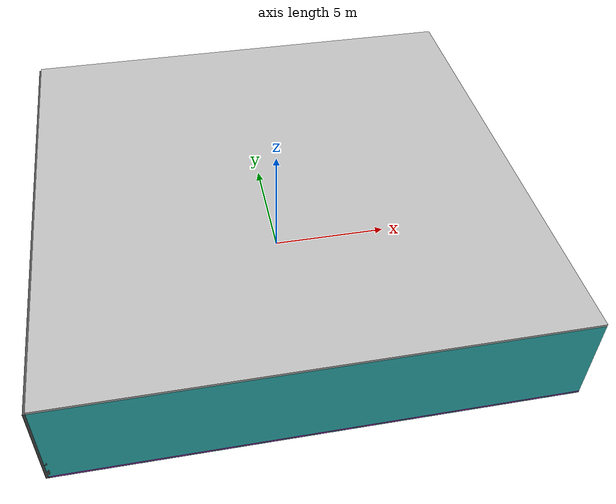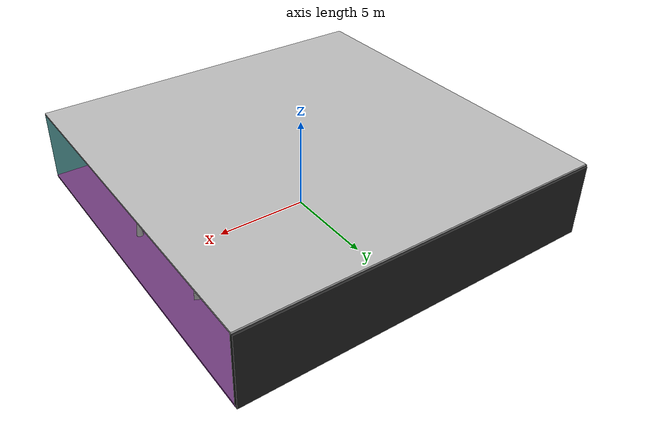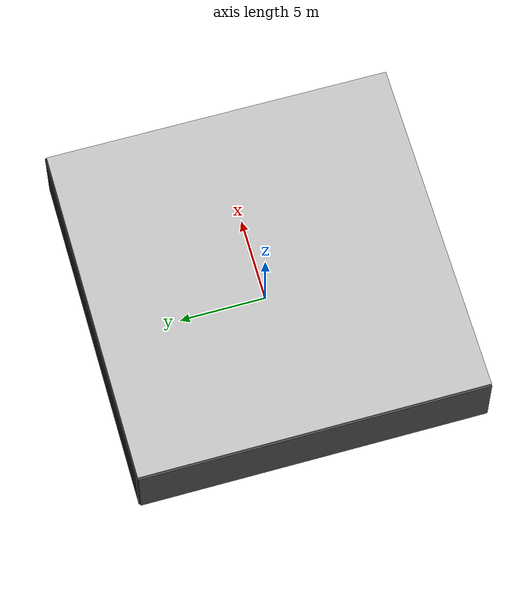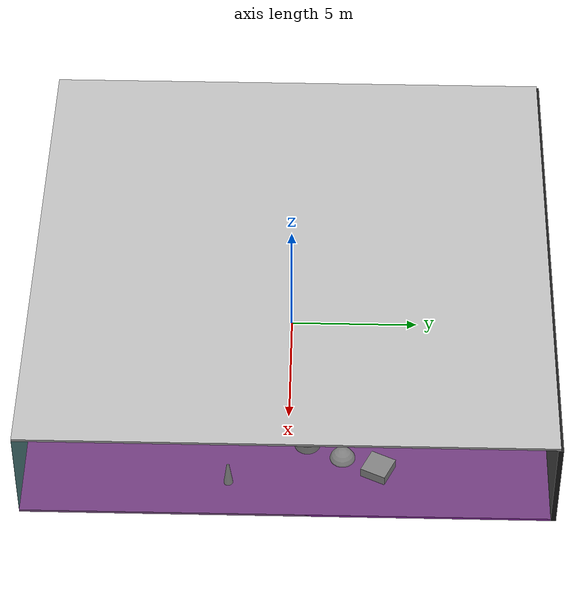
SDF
<sdf version="1.4">
 <world name="default">
  <physics type="ode">
   <max_step_size>0.001</max_step_size>
   <real_time_factor>1</real_time_factor>
   <real_time_update_rate>1000</real_time_update_rate>
   <gravity>0 0 -9.8</gravity>
  </physics>
  <scene><ambient>0.4 0.4 0.4 1</ambient><background>0.7 0.7 0.7 1</background><shadows>1</shadows></scene>
  <model name="Surrounding">
   <static>1</static>
   <link name="Ceiling">
    <collision name="Ceiling_Collision"><geometry><box><size>20 20 0.1</size></box></geometry></collision>
    <visual name="Ceiling_Visual">
     <geometry><box><size>20 20 0.1</size></box></geometry>
     <material>
      <script><uri>file://media/materials/scripts/gazebo.material</uri><name>Gazebo/PioneerBody</name></script>
     </material>
    </visual>
    <pose>0 0 4.05 0 0 0</pose>
   </link>
   <link name="Wall_South">
    <collision name="Wall_South_Collision">
     <geometry><box><size>20 0 4</size></box></geometry>
     <pose>0 0 2 0 -0 0</pose>
    </collision>
    <visual name="Wall_South_Visual">
     <pose>0 0 2 0 -0 0</pose>
     <geometry><box><size>20 0 4</size></box></geometry>
     <material>
      <script><uri>file://media/materials/scripts/gazebo.material</uri><name>Gazebo/TurquoiseGlow</name></script>
     </material>
    </visual>
    <velocity_decay><linear>0</linear><angular>0</angular></velocity_decay>
    <pose>0 -10 0 0 -0 0</pose>
   </link>
   <link name="Wall_East">
    <collision name="Wall_21_Collision">
     <geometry><box><size>20 0 4</size></box></geometry>
     <pose>0 0 2 0 -0 0</pose>
    </collision>
    <visual name="Wall_21_Visual">
     <pose>0 0 2 0 -0 0</pose>
     <geometry><box><size>20 0 4</size></box></geometry>
     <material>
      <script><uri>file://media/materials/scripts/gazebo.material</uri><name>Gazebo/GreyTransparent</name></script>
     </material>
    </visual>
    <velocity_decay><linear>0</linear><angular>0</angular></velocity_decay>
    <pose>10 0 0 0 -0 1.5708</pose>
   </link>
   <link name="Wall_North">
    <collision name="Wall_22_Collision">
     <geometry><box><size>20 0.2 4</size></box></geometry>
     <pose>0 0 2 0 -0 0</pose>
    </collision>
    <visual name="Wall_22_Visual">
     <pose>0 0 2 0 -0 0</pose>
     <geometry><box><size>20 0.2 4</size></box></geometry>
     <material>
      <script><uri>file://media/materials/scripts/gazebo.material</uri><name>Gazebo/FlatBlack</name></script>
     </material>
    </visual>
    <velocity_decay><linear>0</linear><angular>0</angular></velocity_decay>
    <pose>0 10 0 0 -0 0</pose>
   </link>
   <link name="Wall_West">
    <collision name="Wall_23_Collision">
     <geometry><box><size>20 0.2 4</size></box></geometry>
     <pose>0 0 2 0 -0 0</pose>
    </collision>
    <visual name="Wall_23_Visual">
     <pose>0 0 2 0 -0 0</pose>
     <geometry><box><size>20 0.2 4</size></box></geometry>
     <material>
      <script><uri>file://media/materials/scripts/gazebo.material</uri><name>Gazebo/Road</name></script>
     </material>
    </visual>
    <velocity_decay><linear>0</linear><angular>0</angular></velocity_decay>
    <pose>-10 0 0 0 0 -1.5708</pose>
   </link>
   <link name="Ground_link">
    <collision name="collision">
     <pose>0 0 .05 0 -0 0</pose>
     <geometry><box><size>20 20 0.1</size></box></geometry>
    </collision>
    <visual name="visual">
     <pose>0 0 .05 0 -0 0</pose>
     <geometry><box><size>20 20 0.1</size></box></geometry>
     <material>
      <script><uri>file://media/materials/scripts/gazebo.material</uri><name>Gazebo/Purple</name></script>
     </material>
    </visual>
   </link>
   <static>1</static>
  </model>
  <spherical_coordinates>
   <surface_model>EARTH_WGS84</surface_model>
   <latitude_deg>0</latitude_deg>
   <longitude_deg>0</longitude_deg>
   <elevation>0</elevation>
   <heading_deg>0</heading_deg>
  </spherical_coordinates>
  <light name="lightball_0" type="diffuse">
   <diffuse>0.8 0.8 0.8 1</diffuse>
   <specular>0.2 0.2 0.2 1</specular>
   <attenuation>
    <range>100</range>
    <constant>0.7</constant>
    <linear>0.01</linear>
    <quadratic>0.001</quadratic>
   </attenuation>
   <direction>-0.5 0.1 -0.9</direction>
   <pose>6.48975772111 -0.0462799931064 2.52464057397 0 0 0</pose>
  </light>
  <light name="lightball_1" type="diffuse">
   <diffuse>0.8 0.8 0.8 1</diffuse>
   <specular>0.2 0.2 0.2 1</specular>
   <attenuation>
    <range>100</range>
    <constant>0.7</constant>
    <linear>0.01</linear>
    <quadratic>0.001</quadratic>
   </attenuation>
   <direction>-0.5 0.1 -0.9</direction>
   <pose>7.72923199639 6.67879676287 3.24446941171 0 0 0</pose>
  </light>
  <light name="lightball_2" type="diffuse">
   <diffuse>0.8 0.8 0.8 1</diffuse>
   <specular>0.2 0.2 0.2 1</specular>
   <attenuation>
    <range>100</range>
    <constant>0.7</constant>
    <linear>0.01</linear>
    <quadratic>0.001</quadratic>
   </attenuation>
   <direction>-0.5 0.1 -0.9</direction>
   <pose>-0.528278728357 -5.51165597735 1.48194427467 0 0 0</pose>
  </light>
  <include><uri>model://cabinet</uri><pose>-7.08693128225 8.49493364316 0 0 0 0.851663560983</pose></include>
  <include><uri>model://cabinet</uri><pose>-0.985849775347 6.99653588786 0 0 0 2.19037085661</pose></include>
  <include>
   <uri>model://robocup_3Dsim_goal</uri>
   <pose>1.6974737364 -4.27825679071 0 0 0 2.86618804521</pose>
  </include>
  <include>
   <uri>model://construction_cone</uri>
   <pose>1.06474885364 0.718705659026 0 0 0 0.41756452998</pose>
  </include>
  <include><uri>model://table</uri><pose>3.47188336875 -7.10502355002 0 0 0 0.595351278957</pose></include>
  <include>
   <uri>model://construction_cone</uri>
   <pose>8.46724186492 -2.21238106261 0 0 0 0.848537444766</pose>
  </include>
  <include>
   <uri>model://textured_shapes</uri>
   <pose>7.16535970598 2.09946622591 0 0 0 2.69586405961</pose>
  </include>
 </world>
</sdf>

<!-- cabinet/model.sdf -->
<sdf version="1.5">
  <model name="cabinet">
    <static>true</static>
    <link name="cabinet_bottom_plate">
      <inertial>
        <pose>0 0 -1 0 0 0</pose>
        <inertia>
          <ixx>2.050000</ixx>
          <ixy>0</ixy>
          <ixz>0</ixz>
          <iyy>2.050000</iyy>
          <iyz>0</iyz>
          <izz>2.050000</izz>
        </inertia>
        <mass>25.000000</mass>
      </inertial>
      <collision name="cabinet_bottom_plate_geom">
        <pose>0 0 0.010000 0 0 0</pose>
        <geometry>
          <box>
            <size>0.450000 0.450000 0.020000</size>
          </box>
        </geometry>
      </collision>
      <visual name="cabinet_bottom_plate_geom_visual">
        <pose>0 0 0.010000 0 0 0</pose>
        <geometry>
          <box>
            <size>0.450000 0.450000 0.020000</size>
          </box>
        </geometry>
        <material>
          <script>
            <uri>model://media/materials/scripts/gazebo.material</uri>
            <name>Gazebo/Wood</name>
          </script>
        </material>
      </visual>
      <collision name="cabinet_bottom_plate_geom_cabinet_back_plate">
        <pose>0.235000 0 0.510000 0 0 0</pose>
        <geometry>
          <box>
            <size>0.020000 0.450000 1.020000</size>
          </box>
        </geometry>
      </collision>
      <visual name="cabinet_bottom_plate_geom_cabinet_back_plate_visual">
        <pose>0.235000 0 0.510000 0 0 0</pose>
        <geometry>
          <box>
            <size>0.020000 0.450000 1.020000</size>
          </box>
        </geometry>
        <material>
          <script>
            <uri>model://media/materials/scripts/gazebo.material</uri>
            <name>Gazebo/Wood</name>
          </script>
        </material>
      </visual>
      <collision name="cabinet_bottom_plate_geom_cabinet_left_plate">
        <pose>0 0.235000 0.510000 0 0 0</pose>
        <geometry>
          <box>
            <size>0.450000 0.020000 1.020000</size>
          </box>
        </geometry>
      </collision>
      <visual name="cabinet_bottom_plate_geom_cabinet_left_plate_visual">
        <pose>0 0.235000 0.510000 0 0 0</pose>
        <geometry>
          <box>
            <size>0.450000 0.020000 1.020000</size>
          </box>
        </geometry>
        <material>
          <script>
            <uri>model://media/materials/scripts/gazebo.material</uri>
            <name>Gazebo/Wood</name>
          </script>
        </material>
      </visual>
      <collision name="cabinet_bottom_plate_geom_cabinet_middle_plate">
        <pose>0 0 0.510000 0 0 0</pose>
        <geometry>
          <box>
            <size>0.450000 0.450000 0.020000</size>
          </box>
        </geometry>
      </collision>
      <visual name="cabinet_bottom_plate_geom_cabinet_middle_plate_visual">
        <pose>0 0 0.510000 0 0 0</pose>
        <geometry>
          <box>
            <size>0.450000 0.450000 0.020000</size>
          </box>
        </geometry>
        <material>
          <script>
            <uri>model://media/materials/scripts/gazebo.material</uri>
            <name>Gazebo/Wood</name>
          </script>
        </material>
      </visual>
      <collision name="cabinet_bottom_plate_geom_cabinet_right_plate">
        <pose>0 -0.235000 0.510000 0 0 0</pose>
        <geometry>
          <box>
            <size>0.450000 0.020000 1.020000</size>
          </box>
        </geometry>
      </collision>
      <visual name="cabinet_bottom_plate_geom_cabinet_right_plate_visual">
        <pose>0 -0.235000 0.510000 0 0 0</pose>
        <geometry>
          <box>
            <size>0.450000 0.020000 1.020000</size>
          </box>
        </geometry>
        <material>
          <script>
            <uri>model://media/materials/scripts/gazebo.material</uri>
            <name>Gazebo/Wood</name>
          </script>
        </material>
      </visual>
      <collision name="cabinet_bottom_plate_geom_cabinet_top_plate">
        <pose>0 0 1.010000 0 0 0</pose>
        <geometry>
          <box>
            <size>0.450000 0.450000 0.020000</size>
          </box>
        </geometry>
      </collision>
      <visual name="cabinet_bottom_plate_geom_cabinet_top_plate_visual">
        <pose>0 0 1.010000 0 0 0</pose>
        <geometry>
          <box>
            <size>0.450000 0.450000 0.020000</size>
          </box>
        </geometry>
        <material>
          <script>
            <uri>model://media/materials/scripts/gazebo.material</uri>
            <name>Gazebo/Wood</name>
          </script>
        </material>
      </visual>
    </link>
  </model>
</sdf>

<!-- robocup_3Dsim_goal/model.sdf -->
<sdf version="1.5">
  <model name="robocup_3d_goal">
    <static>true</static>
    <link name="left_post">
      <pose>0 1.05 0.45 0 0 0</pose>
      <collision name="collision">
        <geometry>
          <cylinder>
            <radius>0.05</radius>
            <length>0.9</length>
          </cylinder>
        </geometry>
      </collision>
      <visual name="visual">
        <geometry>
          <cylinder>
            <radius>0.05</radius>
            <length>0.9</length>
          </cylinder>
        </geometry>
        <material>
          <script>
            <uri>file://media/materials/scripts/gazebo.material</uri>
            <name>Gazebo/ZincYellow</name>
          </script>
        </material>
      </visual>
    </link>
    <link name="left_support_horiz_lower">
      <pose>0.30 1.05 0.01 0 0 0</pose>
      <collision name="collision">
        <geometry>
          <box>
            <size>0.50 0.02 0.02</size>
          </box>
        </geometry>
      </collision>
      <visual name="visual">
        <geometry>
          <box>
            <size>0.50 0.02 0.02</size>
          </box>
        </geometry>
        <material>
          <script>
            <uri>file://media/materials/scripts/gazebo.material</uri>
            <name>Gazebo/White</name>
          </script>
        </material>
      </visual>
    </link>
    <link name="left_support_horiz_upper">
      <pose>0.30 1.05 0.79 0 0 0</pose>
      <collision name="collision">
        <geometry>
          <box>
            <size>0.50 0.02 0.02</size>
          </box>
        </geometry>
      </collision>
      <visual name="visual">
        <geometry>
          <box>
            <size>0.50 0.02 0.02</size>
          </box>
        </geometry>
        <material>
          <script>
            <uri>file://media/materials/scripts/gazebo.material</uri>
            <name>Gazebo/White</name>
          </script>
        </material>
      </visual>
    </link>
    <link name="left_support_vertical">
      <pose>0.56 1.05 0.4 0 1.5708 0</pose>
      <collision name="collision">
        <geometry>
          <box>
            <size>0.80 0.02 0.02</size>
          </box>
        </geometry>
      </collision>
      <visual name="visual">
        <geometry>
          <box>
            <size>0.80 0.02 0.02</size>
          </box>
        </geometry>
        <material>
          <script>
            <uri>file://media/materials/scripts/gazebo.material</uri>
            <name>Gazebo/White</name>
          </script>
        </material>
      </visual>
    </link>
    <link name="right_support_horiz_lower">
      <pose>0.30 -1.05 0.01 0 0 0</pose>
      <collision name="collision">
        <geometry>
          <box>
            <size>0.50 0.02 0.02</size>
          </box>
        </geometry>
      </collision>
      <visual name="visual">
        <geometry>
          <box>
            <size>0.50 0.02 0.02</size>
          </box>
        </geometry>
        <material>
          <script>
            <uri>file://media/materials/scripts/gazebo.material</uri>
            <name>Gazebo/White</name>
          </script>
        </material>
      </visual>
    </link>
    <link name="right_support_horiz_upper">
      <pose>0.30 -1.05 0.79 0 0 0</pose>
      <collision name="collision">
        <geometry>
          <box>
            <size>0.50 0.02 0.02</size>
          </box>
        </geometry>
      </collision>
      <visual name="visual">
        <geometry>
          <box>
            <size>0.50 0.02 0.02</size>
          </box>
        </geometry>
        <material>
          <script>
            <uri>file://media/materials/scripts/gazebo.material</uri>
            <name>Gazebo/White</name>
          </script>
        </material>
      </visual>
    </link>
    <link name="right_support_vertical">
      <pose>0.56 -1.05 0.4 0 1.5708 0</pose>
      <collision name="collision">
        <geometry>
          <box>
            <size>0.80 0.02 0.02</size>
          </box>
        </geometry>
      </collision>
      <visual name="visual">
        <geometry>
          <box>
            <size>0.80 0.02 0.02</size>
          </box>
        </geometry>
        <material>
          <script>
            <uri>file://media/materials/scripts/gazebo.material</uri>
            <name>Gazebo/White</name>
          </script>
        </material>
      </visual>
    </link>
    <link name="center_support_horiz_lower">
      <pose>0.56 0 0.01 0 1.5708 0</pose>
      <collision name="collision">
        <geometry>
          <box>
            <size>0.02 2.08 0.02</size>
          </box>
        </geometry>
      </collision>
      <visual name="visual">
        <geometry>
          <box>
            <size>0.02 2.08 0.02</size>
          </box>
        </geometry>
        <material>
          <script>
            <uri>file://media/materials/scripts/gazebo.material</uri>
            <name>Gazebo/White</name>
          </script>
        </material>
      </visual>
    </link>
    <link name="center_support_horiz_upper">
      <pose>0.56 0 0.79 0 1.5708 0</pose>
      <collision name="collision">
        <geometry>
          <box>
            <size>0.02 2.08 0.02</size>
          </box>
        </geometry>
      </collision>
      <visual name="visual">
        <geometry>
          <box>
            <size>0.02 2.08 0.02</size>
          </box>
        </geometry>
        <material>
          <script>
            <uri>file://media/materials/scripts/gazebo.material</uri>
            <name>Gazebo/White</name>
          </script>
        </material>
      </visual>
    </link>
    <link name="right_post">
      <pose>0 -1.05 0.45 0 0 0</pose>
      <collision name="collision">
        <geometry>
          <cylinder>
            <radius>0.05</radius>
            <length>0.9</length>
          </cylinder>
        </geometry>
      </collision>
      <visual name="visual">
        <geometry>
          <cylinder>
            <radius>0.05</radius>
            <length>0.9</length>
          </cylinder>
        </geometry>
        <material>
          <script>
            <uri>file://media/materials/scripts/gazebo.material</uri>
            <name>Gazebo/ZincYellow</name>
          </script>
        </material>
      </visual>
    </link>
    <link name="crossbar">
      <pose>0 0 0.85 1.57 1.57 0</pose>
      <collision name="collision">
        <geometry>
          <cylinder>
            <radius>0.05</radius>
            <length>2.0</length>
          </cylinder>
        </geometry>
      </collision>
      <visual name="visual">
        <geometry>
          <cylinder>
            <radius>0.05</radius>
            <length>2.0</length>
          </cylinder>
        </geometry>
        <material>
          <script>
            <uri>file://media/materials/scripts/gazebo.material</uri>
            <name>Gazebo/ZincYellow</name>
          </script>
        </material>
      </visual>
    </link>
    <link name="center_net">
      <pose>0.56 0 0.40 0 0 0</pose>
      <collision name="collision">
        <geometry>
          <box>
            <size>0.01 2.1 0.80</size>
          </box>
        </geometry>
      </collision>
      <visual name="visual">
        <geometry>
          <box>
            <size>0.01 2.1 0.80</size>
          </box>
        </geometry>
        <material>
          <script>
            <uri>model://../model_source/models/robocup09_spl_field/materials/scripts/</uri>
            <uri>model://../model_source/models/robocup09_spl_field/materials/textures/</uri>
            <name>RoboCup/Net</name>
          </script>
        </material>
      </visual>
    </link>
    <link name="left_net">
      <pose>0.30 1.05 0.40 0 0 0</pose>
      <collision name="collision">
        <geometry>
          <box>
            <size>0.50 0.01 0.76</size>
          </box>
        </geometry>
      </collision>
      <visual name="visual">
        <geometry>
          <box>
            <size>0.50 0.01 0.76</size>
          </box>
        </geometry>
        <material>
          <script>
            <uri>model://../model_source/models/robocup09_spl_field/materials/scripts/</uri>
            <uri>model://../model_source/models/robocup09_spl_field/materials/textures/</uri>
            <name>RoboCup/Net</name>
          </script>
        </material>
      </visual>
    </link>
    <link name="right_net">
      <pose>0.30 -1.05 0.40 0 0 0</pose>
      <collision name="collision">
        <geometry>
          <box>
            <size>0.50 0.01 0.76</size>
          </box>
        </geometry>
      </collision>
      <visual name="visual">
        <geometry>
          <box>
            <size>0.50 0.01 0.76</size>
          </box>
        </geometry>
        <material>
          <script>
            <uri>model://../model_source/models/robocup09_spl_field/materials/scripts/</uri>
            <uri>model://../model_source/models/robocup09_spl_field/materials/textures/</uri>
            <name>RoboCup/Net</name>
          </script>
        </material>
      </visual>
    </link>
  </model>
</sdf>

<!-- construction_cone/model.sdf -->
<sdf version="1.5">
  <model name="Construction Cone">
    <link name="link">
      <collision name="collision">
        <geometry>
          <mesh>
            <scale>10 10 10</scale>
            <uri>file://isr-testbed/construction_cone/meshes/construction_cone.dae</uri>
          </mesh>
        </geometry>
      </collision>
      <visual name="visual">
        <geometry>
          <mesh>
            <scale>10 10 10</scale>
            <uri>file://isr-testbed/construction_cone/meshes/construction_cone.dae</uri>
          </mesh>
        </geometry>
      </visual>
    </link>
  </model>
</sdf>

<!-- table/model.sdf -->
<sdf version="1.5">
  <model name="table">
    <static>true</static>
    <link name="link">
      <collision name="surface">
        <pose>0 0 1.0 0 0 0</pose>
        <geometry>
          <box>
            <size>1.5 0.8 0.03</size>
          </box>
        </geometry>
        <surface>
          <friction>
            <ode>
              <mu>0.6</mu>
              <mu2>0.6</mu2>
            </ode>
          </friction>
        </surface>
      </collision>
      <visual name="visual1">
        <pose>0 0 1.0 0 0 0</pose>
        <geometry>
          <box>
            <size>1.5 0.8 0.03</size>
          </box>
        </geometry>
        <material>
          <script>
            <uri>model://media/materials/scripts/gazebo.material</uri>
            <name>Gazebo/Wood</name>
          </script>
        </material>
      </visual>
      <collision name="front_left_leg">
        <pose>0.68 0.38 0.5 0 0 0</pose>
        <geometry>
          <cylinder>
            <radius>0.02</radius>
            <length>1.0</length>
          </cylinder>
        </geometry>
      </collision>
      <visual name="front_left_leg">
        <pose>0.68 0.38 0.5 0 0 0</pose>
        <geometry>
          <cylinder>
            <radius>0.02</radius>
            <length>1.0</length>
          </cylinder>
        </geometry>
        <material>
          <script>
            <uri>model://media/materials/scripts/gazebo.material</uri>
            <name>Gazebo/Grey</name>
          </script>
        </material>
      </visual>
      <collision name="front_right_leg">
        <pose>0.68 -0.38 0.5 0 0 0</pose>
        <geometry>
          <cylinder>
            <radius>0.02</radius>
            <length>1.0</length>
          </cylinder>
        </geometry>
      </collision>
      <visual name="front_right_leg">
        <pose>0.68 -0.38 0.5 0 0 0</pose>
        <geometry>
          <cylinder>
            <radius>0.02</radius>
            <length>1.0</length>
          </cylinder>
        </geometry>
        <material>
          <script>
            <uri>model://media/materials/scripts/gazebo.material</uri>
            <name>Gazebo/Grey</name>
          </script>
        </material>
      </visual>
      <collision name="back_right_leg">
        <pose>-0.68 -0.38 0.5 0 0 0</pose>
        <geometry>
          <cylinder>
            <radius>0.02</radius>
            <length>1.0</length>
          </cylinder>
        </geometry>
      </collision>
      <visual name="back_right_leg">
        <pose>-0.68 -0.38 0.5 0 0 0</pose>
        <geometry>
          <cylinder>
            <radius>0.02</radius>
            <length>1.0</length>
          </cylinder>
        </geometry>
        <material>
          <script>
            <uri>model://media/materials/scripts/gazebo.material</uri>
            <name>Gazebo/Grey</name>
          </script>
        </material>
      </visual>
      <collision name="back_left_leg">
        <pose>-0.68 0.38 0.5 0 0 0</pose>
        <geometry>
          <cylinder>
            <radius>0.02</radius>
            <length>1.0</length>
          </cylinder>
        </geometry>
      </collision>
      <visual name="back_left_leg">
        <pose>-0.68 0.38 0.5 0 0 0</pose>
        <geometry>
          <cylinder>
            <radius>0.02</radius>
            <length>1.0</length>
          </cylinder>
        </geometry>
        <material>
          <script>
            <uri>model://media/materials/scripts/gazebo.material</uri>
            <name>Gazebo/Grey</name>
          </script>
        </material>
      </visual>
    </link>
  </model>
</sdf>

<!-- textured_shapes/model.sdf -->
<sdf version="1.6">
  <model name="textured_shapes">
    <pose>0 0 0.5 0 0 0</pose>
    <link name="box">
      <pose>0 -1.5 0 0 0 0</pose>
      <collision name="collision">
        <geometry>
          <box>
            <size>1 1 1</size>
          </box>
        </geometry>
      </collision>
      <visual name="visual">
        <geometry>
          <box>
            <size>1 1 1</size>
          </box>
        </geometry>
        <material>
          <script>
            <uri>model://../model_source/models/textured_shapes/materials/scripts</uri>
            <uri>model://../model_source/models/textured_shapes/materials/textures</uri>
            <name>TexturedShape/Squares</name>
          </script>
        </material>
      </visual>
    </link>
    <link name="sphere">
      <collision name="collision">
        <geometry>
          <sphere>
            <radius>0.5</radius>
          </sphere>
        </geometry>
      </collision>
      <visual name="visual">
        <geometry>
          <sphere>
            <radius>0.5</radius>
          </sphere>
        </geometry>
        <material>
          <script>
            <uri>model://../model_source/models/textured_shapes/materials/scripts</uri>
            <uri>model://../model_source/models/textured_shapes/materials/textures</uri>
            <name>TexturedShape/Squares</name>
          </script>
        </material>
      </visual>
    </link>
    <link name="cylinder">
      <pose>0 1.5 0 0 0 0</pose>
      <collision name="collision">
        <geometry>
          <cylinder>
            <radius>0.5</radius>
            <length>1</length>
          </cylinder>
        </geometry>
      </collision>
      <visual name="visual">
        <geometry>
          <cylinder>
            <radius>0.5</radius>
            <length>1</length>
          </cylinder>
        </geometry>
        <material>
          <script>
            <uri>model://../model_source/models/textured_shapes/materials/scripts</uri>
            <uri>model://../model_source/models/textured_shapes/materials/textures</uri>
            <name>TexturedShape/Squares</name>
          </script>
        </material>
      </visual>
    </link>
  </model>
</sdf>
